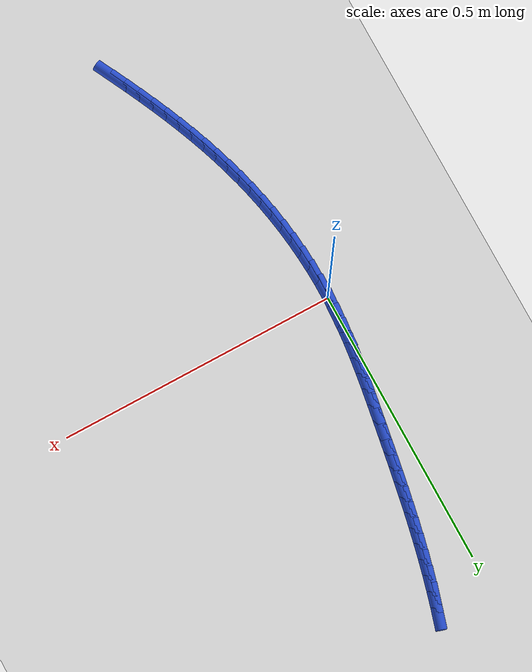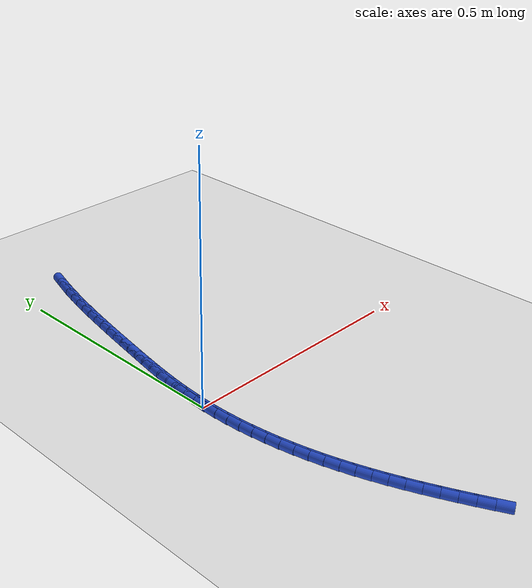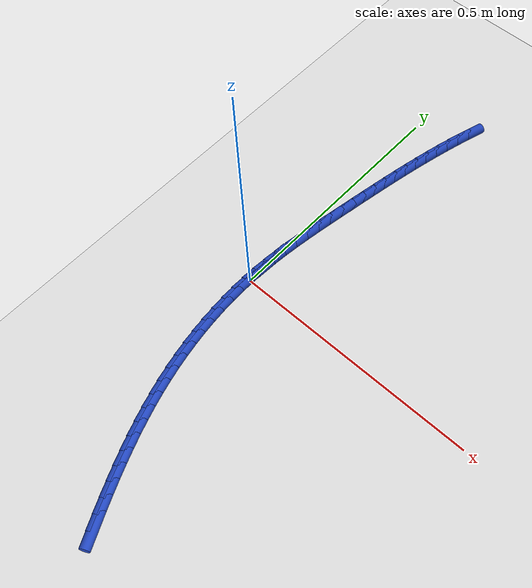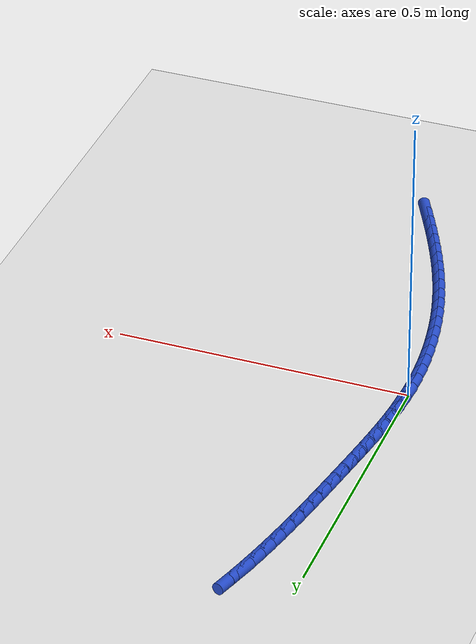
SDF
<sdf version="1.6">
 <world name="default">
  <model name="ground_plane">
   <static>1</static>
   <link name="link">
    <collision name="collision">
     <geometry><plane><normal>0 0 1</normal><size>100 100</size></plane></geometry>
     <surface><friction><ode><mu>100</mu><mu2>50</mu2></ode></friction></surface>
    </collision>
    <visual name="visual">
     <cast_shadows>0</cast_shadows>
     <geometry><plane><normal>0 0 1</normal><size>100 100</size></plane></geometry>
     <material>
      <script><uri>file://media/materials/scripts/gazebo.material</uri><name>Gazebo/WhiteGlow</name></script>
     </material>
    </visual>
   </link>
  </model>
  <model name="line">
   <link name="link_0">
    <pose>-6.071532165918825e-18 3.469446951953614e-17 0.01 0 1.57 1.534115530524888</pose>
    <collision name="collision">
     <geometry><cylinder><radius>0.01</radius><length>0.08</length></cylinder></geometry>
    </collision>
    <visual name="visual">
     <material>
      <script><name>Gazebo/Blue</name><uri>file://media/materials/scripts/gazebo.material</uri></script>
     </material>
     <geometry><cylinder><radius>0.01</radius><length>0.08</length></cylinder></geometry>
    </visual>
   </link>
   <link name="link_1">
    <pose>0.0010214595155121423 0.027834765331651374 0.01 0 1.57 1.5033453542491406</pose>
    <collision name="collision">
     <geometry><cylinder><radius>0.01</radius><length>0.08</length></cylinder></geometry>
    </collision>
    <visual name="visual">
     <material>
      <script><name>Gazebo/Blue</name><uri>file://media/materials/scripts/gazebo.material</uri></script>
     </material>
     <geometry><cylinder><radius>0.01</radius><length>0.08</length></cylinder></geometry>
    </visual>
   </link>
   <link name="link_2">
    <pose>0.0028977489729535757 0.05560965198962347 0.01 0 1.57 1.4765638059390753</pose>
    <collision name="collision">
     <geometry><cylinder><radius>0.01</radius><length>0.08</length></cylinder></geometry>
    </collision>
    <visual name="visual">
     <material>
      <script><name>Gazebo/Blue</name><uri>file://media/materials/scripts/gazebo.material</uri></script>
     </material>
     <geometry><cylinder><radius>0.01</radius><length>0.08</length></cylinder></geometry>
    </visual>
   </link>
   <link name="link_3">
    <pose>0.00551650167215264 0.0833176744163579 0.01 0 1.57 1.4537671746762308</pose>
    <collision name="collision">
     <geometry><cylinder><radius>0.01</radius><length>0.08</length></cylinder></geometry>
    </collision>
    <visual name="visual">
     <material>
      <script><name>Gazebo/Blue</name><uri>file://media/materials/scripts/gazebo.material</uri></script>
     </material>
     <geometry><cylinder><radius>0.01</radius><length>0.08</length></cylinder></geometry>
    </visual>
   </link>
   <link name="link_4">
    <pose>0.008765350912937677 0.11095184705429631 0.01 0 1.57 1.4349370551965805</pose>
    <collision name="collision">
     <geometry><cylinder><radius>0.01</radius><length>0.08</length></cylinder></geometry>
    </collision>
    <visual name="visual">
     <material>
      <script><name>Gazebo/Blue</name><uri>file://media/materials/scripts/gazebo.material</uri></script>
     </material>
     <geometry><cylinder><radius>0.01</radius><length>0.08</length></cylinder></geometry>
    </visual>
   </link>
   <link name="link_5">
    <pose>0.012531929995137026 0.13850518434588027 0.01 0 1.57 1.4200511894583752</pose>
    <collision name="collision">
     <geometry><cylinder><radius>0.01</radius><length>0.08</length></cylinder></geometry>
    </collision>
    <visual name="visual">
     <material>
      <script><name>Gazebo/Blue</name><uri>file://media/materials/scripts/gazebo.material</uri></script>
     </material>
     <geometry><cylinder><radius>0.01</radius><length>0.08</length></cylinder></geometry>
    </visual>
   </link>
   <link name="link_6">
    <pose>0.016703872218579024 0.16597070073355139 0.01 0 1.57 1.4090923017169963</pose>
    <collision name="collision">
     <geometry><cylinder><radius>0.01</radius><length>0.08</length></cylinder></geometry>
    </collision>
    <visual name="visual">
     <material>
      <script><name>Gazebo/Blue</name><uri>file://media/materials/scripts/gazebo.material</uri></script>
     </material>
     <geometry><cylinder><radius>0.01</radius><length>0.08</length></cylinder></geometry>
    </visual>
   </link>
   <link name="link_7">
    <pose>0.02116881088309202 0.19334141065975133 0.01 0 1.57 1.4020550353025447</pose>
    <collision name="collision">
     <geometry><cylinder><radius>0.01</radius><length>0.08</length></cylinder></geometry>
    </collision>
    <visual name="visual">
     <material>
      <script><name>Gazebo/Blue</name><uri>file://media/materials/scripts/gazebo.material</uri></script>
     </material>
     <geometry><cylinder><radius>0.01</radius><length>0.08</length></cylinder></geometry>
    </visual>
   </link>
   <link name="link_8">
    <pose>0.025814379288504358 0.2206103285669217 0.01 0 1.57 1.3989224692133408</pose>
    <collision name="collision">
     <geometry><cylinder><radius>0.01</radius><length>0.08</length></cylinder></geometry>
    </collision>
    <visual name="visual">
     <material>
      <script><name>Gazebo/Blue</name><uri>file://media/materials/scripts/gazebo.material</uri></script>
     </material>
     <geometry><cylinder><radius>0.01</radius><length>0.08</length></cylinder></geometry>
    </visual>
   </link>
   <link name="link_9">
    <pose>0.0305290375935477 0.24777060784081775 0.01 0 1.57 1.3976959078714157</pose>
    <collision name="collision">
     <geometry><cylinder><radius>0.01</radius><length>0.08</length></cylinder></geometry>
    </collision>
    <visual name="visual">
     <material>
      <script><name>Gazebo/Blue</name><uri>file://media/materials/scripts/gazebo.material</uri></script>
     </material>
     <geometry><cylinder><radius>0.01</radius><length>0.08</length></cylinder></geometry>
    </visual>
   </link>
   <link name="link_10">
    <pose>0.03525954094987498 0.27482519761282703 0.01 0 1.57 1.395052872035458</pose>
    <collision name="collision">
     <geometry><cylinder><radius>0.01</radius><length>0.08</length></cylinder></geometry>
    </collision>
    <visual name="visual">
     <material>
      <script><name>Gazebo/Blue</name><uri>file://media/materials/scripts/gazebo.material</uri></script>
     </material>
     <geometry><cylinder><radius>0.01</radius><length>0.08</length></cylinder></geometry>
    </visual>
   </link>
   <link name="link_11">
    <pose>0.04004838355938719 0.30179313476624026 0.01 0 1.57 1.390678903506611</pose>
    <collision name="collision">
     <geometry><cylinder><radius>0.01</radius><length>0.08</length></cylinder></geometry>
    </collision>
    <visual name="visual">
     <material>
      <script><name>Gazebo/Blue</name><uri>file://media/materials/scripts/gazebo.material</uri></script>
     </material>
     <geometry><cylinder><radius>0.01</radius><length>0.08</length></cylinder></geometry>
    </visual>
   </link>
   <link name="link_12">
    <pose>0.04494695804197693 0.32869495145237665 0.01 0 1.57 1.3845796043517797</pose>
    <collision name="collision">
     <geometry><cylinder><radius>0.01</radius><length>0.08</length></cylinder></geometry>
    </collision>
    <visual name="visual">
     <material>
      <script><name>Gazebo/Blue</name><uri>file://media/materials/scripts/gazebo.material</uri></script>
     </material>
     <geometry><cylinder><radius>0.01</radius><length>0.08</length></cylinder></geometry>
    </visual>
   </link>
   <link name="link_13">
    <pose>0.05000665701753685 0.35555117982255613 0.01 0 1.57 1.376772325901493</pose>
    <collision name="collision">
     <geometry><cylinder><radius>0.01</radius><length>0.08</length></cylinder></geometry>
    </collision>
    <visual name="visual">
     <material>
      <script><name>Gazebo/Blue</name><uri>file://media/materials/scripts/gazebo.material</uri></script>
     </material>
     <geometry><cylinder><radius>0.01</radius><length>0.08</length></cylinder></geometry>
    </visual>
   </link>
   <link name="link_14">
    <pose>0.05527887310595958 0.38238235202809834 0.01 0 1.57 1.367286539526103</pose>
    <collision name="collision">
     <geometry><cylinder><radius>0.01</radius><length>0.08</length></cylinder></geometry>
    </collision>
    <visual name="visual">
     <material>
      <script><name>Gazebo/Blue</name><uri>file://media/materials/scripts/gazebo.material</uri></script>
     </material>
     <geometry><cylinder><radius>0.01</radius><length>0.08</length></cylinder></geometry>
    </visual>
   </link>
   <link name="link_15">
    <pose>0.06081499892713771 0.4092090002203226 0.01 0 1.57 1.356164123816054</pose>
    <collision name="collision">
     <geometry><cylinder><radius>0.01</radius><length>0.08</length></cylinder></geometry>
    </collision>
    <visual name="visual">
     <material>
      <script><name>Gazebo/Blue</name><uri>file://media/materials/scripts/gazebo.material</uri></script>
     </material>
     <geometry><cylinder><radius>0.01</radius><length>0.08</length></cylinder></geometry>
    </visual>
   </link>
   <link name="link_16">
    <pose>0.06666642710096392 0.4360516565505487 0.01 0 1.57 1.3434595279876318</pose>
    <collision name="collision">
     <geometry><cylinder><radius>0.01</radius><length>0.08</length></cylinder></geometry>
    </collision>
    <visual name="visual">
     <material>
      <script><name>Gazebo/Blue</name><uri>file://media/materials/scripts/gazebo.material</uri></script>
     </material>
     <geometry><cylinder><radius>0.01</radius><length>0.08</length></cylinder></geometry>
    </visual>
   </link>
   <link name="link_17">
    <pose>0.07288455024733081 0.4629308531700964 0.01 0 1.57 1.3292397669451796</pose>
    <collision name="collision">
     <geometry><cylinder><radius>0.01</radius><length>0.08</length></cylinder></geometry>
    </collision>
    <visual name="visual">
     <material>
      <script><name>Gazebo/Blue</name><uri>file://media/materials/scripts/gazebo.material</uri></script>
     </material>
     <geometry><cylinder><radius>0.01</radius><length>0.08</length></cylinder></geometry>
    </visual>
   </link>
   <link name="link_18">
    <pose>0.07952076098613106 0.4898671222302854 0.01 0 1.57 1.3135842027053324</pose>
    <collision name="collision">
     <geometry><cylinder><radius>0.01</radius><length>0.08</length></cylinder></geometry>
    </collision>
    <visual name="visual">
     <material>
      <script><name>Gazebo/Blue</name><uri>file://media/materials/scripts/gazebo.material</uri></script>
     </material>
     <geometry><cylinder><radius>0.01</radius><length>0.08</length></cylinder></geometry>
    </visual>
   </link>
   <link name="link_19">
    <pose>0.08662645193725724 0.5168809958824349 0.01 0 1.57 1.2965840706555858</pose>
    <collision name="collision">
     <geometry><cylinder><radius>0.01</radius><length>0.08</length></cylinder></geometry>
    </collision>
    <visual name="visual">
     <material>
      <script><name>Gazebo/Blue</name><uri>file://media/materials/scripts/gazebo.material</uri></script>
     </material>
     <geometry><cylinder><radius>0.01</radius><length>0.08</length></cylinder></geometry>
    </visual>
   </link>
   <link name="link_20">
    <pose>0.09425301572060199 0.5439930062778646 0.01 0 1.57 1.2783417178585832</pose>
    <collision name="collision">
     <geometry><cylinder><radius>0.01</radius><length>0.08</length></cylinder></geometry>
    </collision>
    <visual name="visual">
     <material>
      <script><name>Gazebo/Blue</name><uri>file://media/materials/scripts/gazebo.material</uri></script>
     </material>
     <geometry><cylinder><radius>0.01</radius><length>0.08</length></cylinder></geometry>
    </visual>
   </link>
   <link name="link_241">
    <pose>0.13522143884819512 -0.5068271225990814 0.01 0 1.57 -1.1094685305631045</pose>
    <collision name="collision">
     <geometry><cylinder><radius>0.01</radius><length>0.08</length></cylinder></geometry>
    </collision>
    <visual name="visual">
     <material>
      <script><name>Gazebo/Blue</name><uri>file://media/materials/scripts/gazebo.material</uri></script>
     </material>
     <geometry><cylinder><radius>0.01</radius><length>0.08</length></cylinder></geometry>
    </visual>
   </link>
   <link name="link_242">
    <pose>0.12232478625646889 -0.4808835307755054 0.01 0 1.57 -1.1246121825272615</pose>
    <collision name="collision">
     <geometry><cylinder><radius>0.01</radius><length>0.08</length></cylinder></geometry>
    </collision>
    <visual name="visual">
     <material>
      <script><name>Gazebo/Blue</name><uri>file://media/materials/scripts/gazebo.material</uri></script>
     </material>
     <geometry><cylinder><radius>0.01</radius><length>0.08</length></cylinder></geometry>
    </visual>
   </link>
   <link name="link_243">
    <pose>0.10993676343150319 -0.4549865306741448 0.01 0 1.57 -1.138597213853047</pose>
    <collision name="collision">
     <geometry><cylinder><radius>0.01</radius><length>0.08</length></cylinder></geometry>
    </collision>
    <visual name="visual">
     <material>
      <script><name>Gazebo/Blue</name><uri>file://media/materials/scripts/gazebo.material</uri></script>
     </material>
     <geometry><cylinder><radius>0.01</radius><length>0.08</length></cylinder></geometry>
    </visual>
   </link>
   <link name="link_244">
    <pose>0.09804332226326909 -0.4292032697529008 0.01 0 1.57 -1.1544951399123962</pose>
    <collision name="collision">
     <geometry><cylinder><radius>0.01</radius><length>0.08</length></cylinder></geometry>
    </collision>
    <visual name="visual">
     <material>
      <script><name>Gazebo/Blue</name><uri>file://media/materials/scripts/gazebo.material</uri></script>
     </material>
     <geometry><cylinder><radius>0.01</radius><length>0.08</length></cylinder></geometry>
    </visual>
   </link>
   <link name="link_245">
    <pose>0.08667357572019095 -0.40348820330176943 0.01 0 1.57 -1.1725236439304896</pose>
    <collision name="collision">
     <geometry><cylinder><radius>0.01</radius><length>0.08</length></cylinder></geometry>
    </collision>
    <visual name="visual">
     <material>
      <script><name>Gazebo/Blue</name><uri>file://media/materials/scripts/gazebo.material</uri></script>
     </material>
     <geometry><cylinder><radius>0.01</radius><length>0.08</length></cylinder></geometry>
    </visual>
   </link>
   <link name="link_246">
    <pose>0.07585979753907204 -0.37778753394762016 0.01 0 1.57 -1.1926530394338664</pose>
    <collision name="collision">
     <geometry><cylinder><radius>0.01</radius><length>0.08</length></cylinder></geometry>
    </collision>
    <visual name="visual">
     <material>
      <script><name>Gazebo/Blue</name><uri>file://media/materials/scripts/gazebo.material</uri></script>
     </material>
     <geometry><cylinder><radius>0.01</radius><length>0.08</length></cylinder></geometry>
    </visual>
   </link>
   <link name="link_247">
    <pose>0.06563426145671462 -0.3520474643173203 0.01 0 1.57 -1.2148268913655127</pose>
    <collision name="collision">
     <geometry><cylinder><radius>0.01</radius><length>0.08</length></cylinder></geometry>
    </collision>
    <visual name="visual">
     <material>
      <script><name>Gazebo/Blue</name><uri>file://media/materials/scripts/gazebo.material</uri></script>
     </material>
     <geometry><cylinder><radius>0.01</radius><length>0.08</length></cylinder></geometry>
    </visual>
   </link>
   <link name="link_248">
    <pose>0.05602924120992128 -0.32621419703773813 0.01 0 1.57 -1.2389598066127812</pose>
    <collision name="collision">
     <geometry><cylinder><radius>0.01</radius><length>0.08</length></cylinder></geometry>
    </collision>
    <visual name="visual">
     <material>
      <script><name>Gazebo/Blue</name><uri>file://media/materials/scripts/gazebo.material</uri></script>
     </material>
     <geometry><cylinder><radius>0.01</radius><length>0.08</length></cylinder></geometry>
    </visual>
   </link>
   <link name="link_249">
    <pose>0.0470770105354946 -0.3002339347357417 0.01 0 1.57 -1.264936006481196</pose>
    <collision name="collision">
     <geometry><cylinder><radius>0.01</radius><length>0.08</length></cylinder></geometry>
    </collision>
    <visual name="visual">
     <material>
      <script><name>Gazebo/Blue</name><uri>file://media/materials/scripts/gazebo.material</uri></script>
     </material>
     <geometry><cylinder><radius>0.01</radius><length>0.08</length></cylinder></geometry>
    </visual>
   </link>
   <link name="link_250">
    <pose>0.03880984317023716 -0.27405288003819916 0.01 0 1.57 -1.2926089675167027</pose>
    <collision name="collision">
     <geometry><cylinder><radius>0.01</radius><length>0.08</length></cylinder></geometry>
    </collision>
    <visual name="visual">
     <material>
      <script><name>Gazebo/Blue</name><uri>file://media/materials/scripts/gazebo.material</uri></script>
     </material>
     <geometry><cylinder><radius>0.01</radius><length>0.08</length></cylinder></geometry>
    </visual>
   </link>
   <link name="link_251">
    <pose>0.03126001285095156 -0.24761723557197865 0.01 0 1.57 -1.321739142552697</pose>
    <collision name="collision">
     <geometry><cylinder><radius>0.01</radius><length>0.08</length></cylinder></geometry>
    </collision>
    <visual name="visual">
     <material>
      <script><name>Gazebo/Blue</name><uri>file://media/materials/scripts/gazebo.material</uri></script>
     </material>
     <geometry><cylinder><radius>0.01</radius><length>0.08</length></cylinder></geometry>
    </visual>
   </link>
   <link name="link_252">
    <pose>0.024459337519980535 -0.2208784916453828 0.01 0 1.57 -1.3515222030684066</pose>
    <collision name="collision">
     <geometry><cylinder><radius>0.01</radius><length>0.08</length></cylinder></geometry>
    </collision>
    <visual name="visual">
     <material>
      <script><name>Gazebo/Blue</name><uri>file://media/materials/scripts/gazebo.material</uri></script>
     </material>
     <geometry><cylinder><radius>0.01</radius><length>0.08</length></cylinder></geometry>
    </visual>
   </link>
   <link name="link_253">
    <pose>0.01843473117733548 -0.19384502930831998 0.01 0 1.57 -1.3816046719252406</pose>
    <collision name="collision">
     <geometry><cylinder><radius>0.01</radius><length>0.08</length></cylinder></geometry>
    </collision>
    <visual name="visual">
     <material>
      <script><name>Gazebo/Blue</name><uri>file://media/materials/scripts/gazebo.material</uri></script>
     </material>
     <geometry><cylinder><radius>0.01</radius><length>0.08</length></cylinder></geometry>
    </visual>
   </link>
   <link name="link_254">
    <pose>0.013210121838909033 -0.16655987007736472 0.01 0 1.57 -1.41207752168383</pose>
    <collision name="collision">
     <geometry><cylinder><radius>0.01</radius><length>0.08</length></cylinder></geometry>
    </collision>
    <visual name="visual">
     <material>
      <script><name>Gazebo/Blue</name><uri>file://media/materials/scripts/gazebo.material</uri></script>
     </material>
     <geometry><cylinder><radius>0.01</radius><length>0.08</length></cylinder></geometry>
    </visual>
   </link>
   <link name="link_255">
    <pose>0.008809395167255835 -0.13906652681109047 0.01 0 1.57 -1.4430356774986575</pose>
    <collision name="collision">
     <geometry><cylinder><radius>0.01</radius><length>0.08</length></cylinder></geometry>
    </collision>
    <visual name="visual">
     <material>
      <script><name>Gazebo/Blue</name><uri>file://media/materials/scripts/gazebo.material</uri></script>
     </material>
     <geometry><cylinder><radius>0.01</radius><length>0.08</length></cylinder></geometry>
    </visual>
   </link>
   <link name="link_256">
    <pose>0.005256436824930488 -0.11140851236807053 0.01 0 1.57 -1.4745723029327673</pose>
    <collision name="collision">
     <geometry><cylinder><radius>0.01</radius><length>0.08</length></cylinder></geometry>
    </collision>
    <visual name="visual">
     <material>
      <script><name>Gazebo/Blue</name><uri>file://media/materials/scripts/gazebo.material</uri></script>
     </material>
     <geometry><cylinder><radius>0.01</radius><length>0.08</length></cylinder></geometry>
    </visual>
   </link>
   <link name="link_257">
    <pose>0.0025751324744876154 -0.08362933960687823 0.01 0 1.57 -1.50677880276718</pose>
    <collision name="collision">
     <geometry><cylinder><radius>0.01</radius><length>0.08</length></cylinder></geometry>
    </collision>
    <visual name="visual">
     <material>
      <script><name>Gazebo/Blue</name><uri>file://media/materials/scripts/gazebo.material</uri></script>
     </material>
     <geometry><cylinder><radius>0.01</radius><length>0.08</length></cylinder></geometry>
    </visual>
   </link>
   <link name="link_258">
    <pose>0.000789367778481832 -0.05577252138608681 0.01 0 1.57 -1.5397446454386927</pose>
    <collision name="collision">
     <geometry><cylinder><radius>0.01</radius><length>0.08</length></cylinder></geometry>
    </collision>
    <visual name="visual">
     <material>
      <script><name>Gazebo/Blue</name><uri>file://media/materials/scripts/gazebo.material</uri></script>
     </material>
     <geometry><cylinder><radius>0.01</radius><length>0.08</length></cylinder></geometry>
    </visual>
   </link>
   <link name="link_259">
    <pose>-7.697160053224709e-05 -0.027881570564269636 0.01 0 1.57 1.568035671514893</pose>
    <collision name="collision">
     <geometry><cylinder><radius>0.01</radius><length>0.08</length></cylinder></geometry>
    </collision>
    <visual name="visual">
     <material>
      <script><name>Gazebo/Blue</name><uri>file://media/materials/scripts/gazebo.material</uri></script>
     </material>
     <geometry><cylinder><radius>0.01</radius><length>0.08</length></cylinder></geometry>
    </visual>
   </link>
   <link name="link_260">
    <pose>-2.6020852139652106e-18 -2.7755575615628914e-17 0.01 0 1.57 1.5332926168915215</pose>
    <collision name="collision">
     <geometry><cylinder><radius>0.01</radius><length>0.08</length></cylinder></geometry>
    </collision>
    <visual name="visual">
     <material>
      <script><name>Gazebo/Blue</name><uri>file://media/materials/scripts/gazebo.material</uri></script>
     </material>
     <geometry><cylinder><radius>0.01</radius><length>0.08</length></cylinder></geometry>
    </visual>
   </link>
   <link name="link_261">
    <pose>0.0010441682426331825 0.027828677448148723 0.01 0 1.57 1.4975384124085174</pose>
    <collision name="collision">
     <geometry><cylinder><radius>0.01</radius><length>0.08</length></cylinder></geometry>
    </collision>
    <visual name="visual">
     <material>
      <script><name>Gazebo/Blue</name><uri>file://media/materials/scripts/gazebo.material</uri></script>
     </material>
     <geometry><cylinder><radius>0.01</radius><length>0.08</length></cylinder></geometry>
    </visual>
   </link>
   <link name="link_262">
    <pose>0.003079418789921925 0.055560948921603306 0.01 0 1.57 1.5154288161471774</pose>
    <collision name="collision">
     <geometry><cylinder><radius>0.01</radius><length>0.08</length></cylinder></geometry>
    </collision>
    <visual name="visual">
     <material>
      <script><name>Gazebo/Blue</name><uri>file://media/materials/scripts/gazebo.material</uri></script>
     </material>
     <geometry><cylinder><radius>0.01</radius><length>0.08</length></cylinder></geometry>
    </visual>
   </link>
  </model>
 </world>
</sdf>
